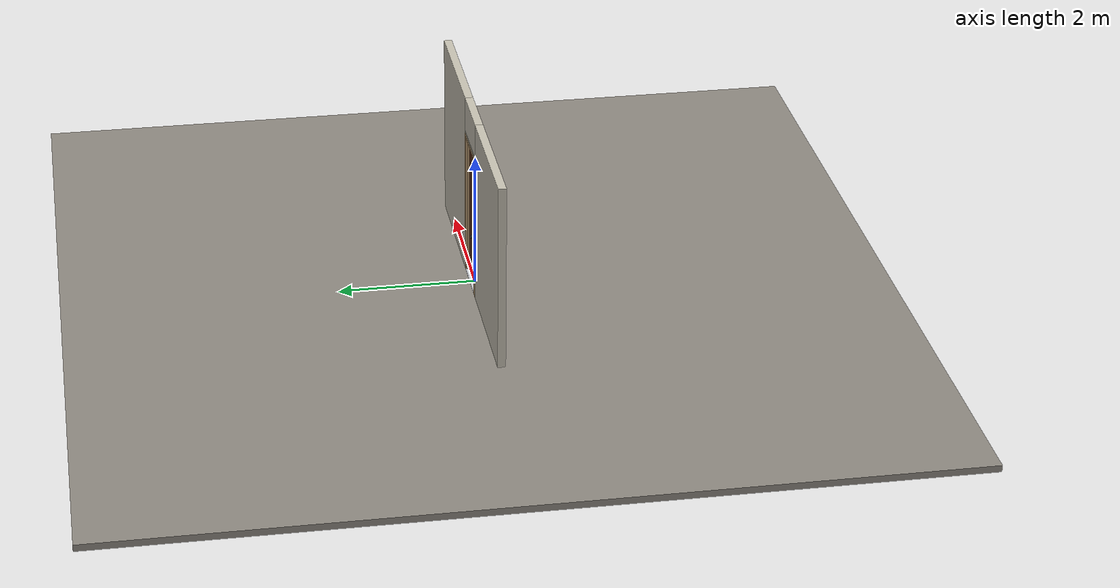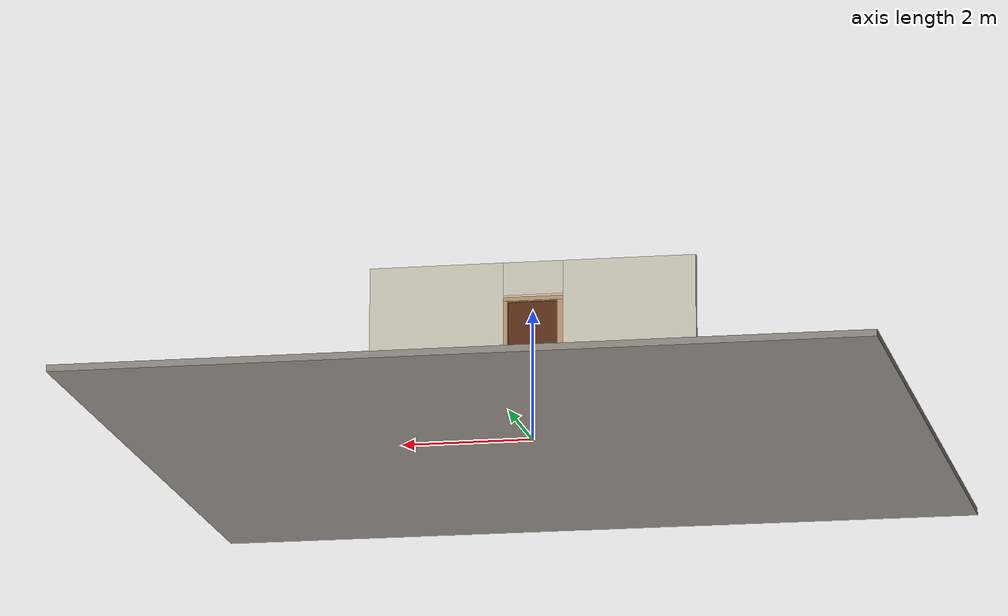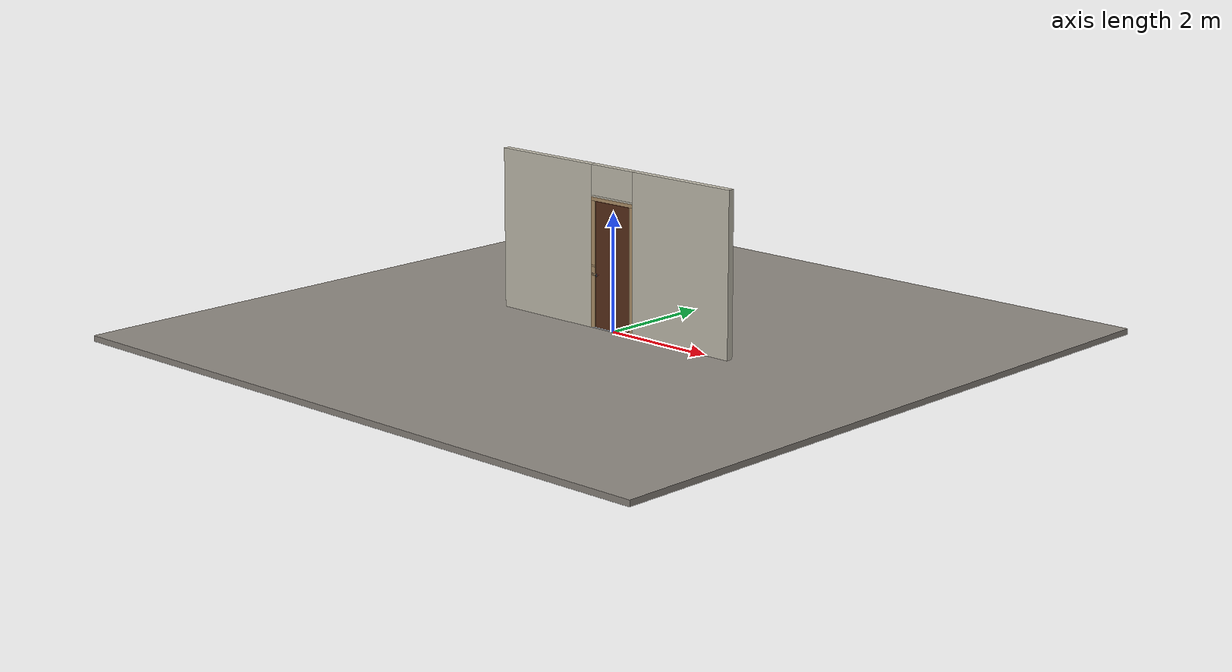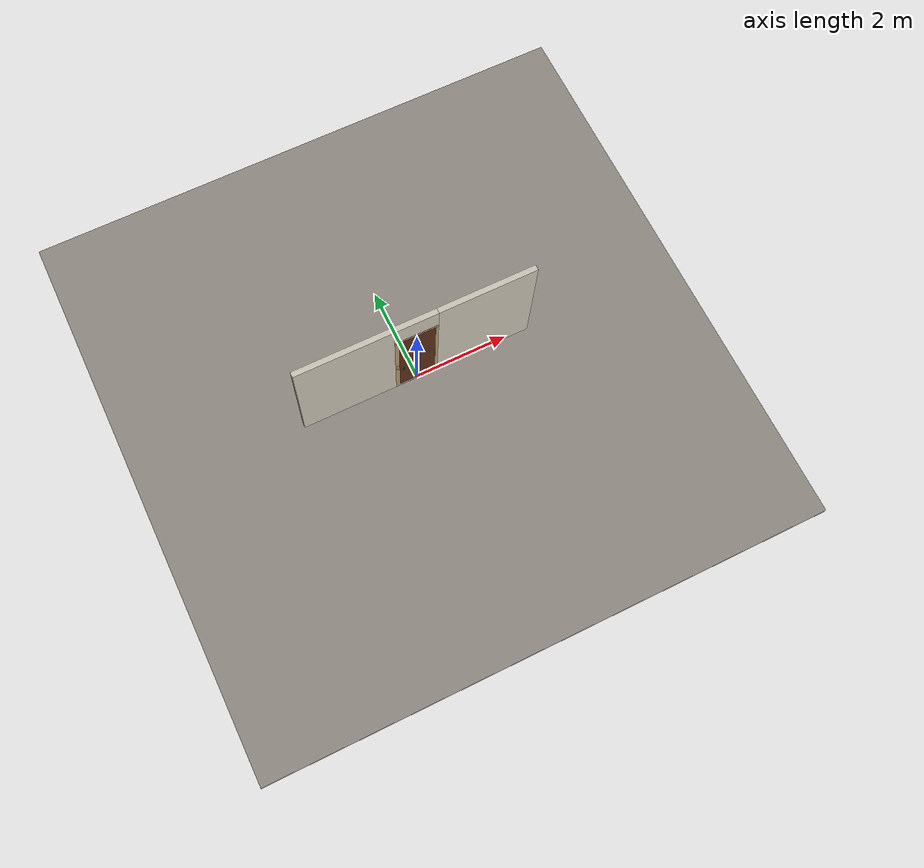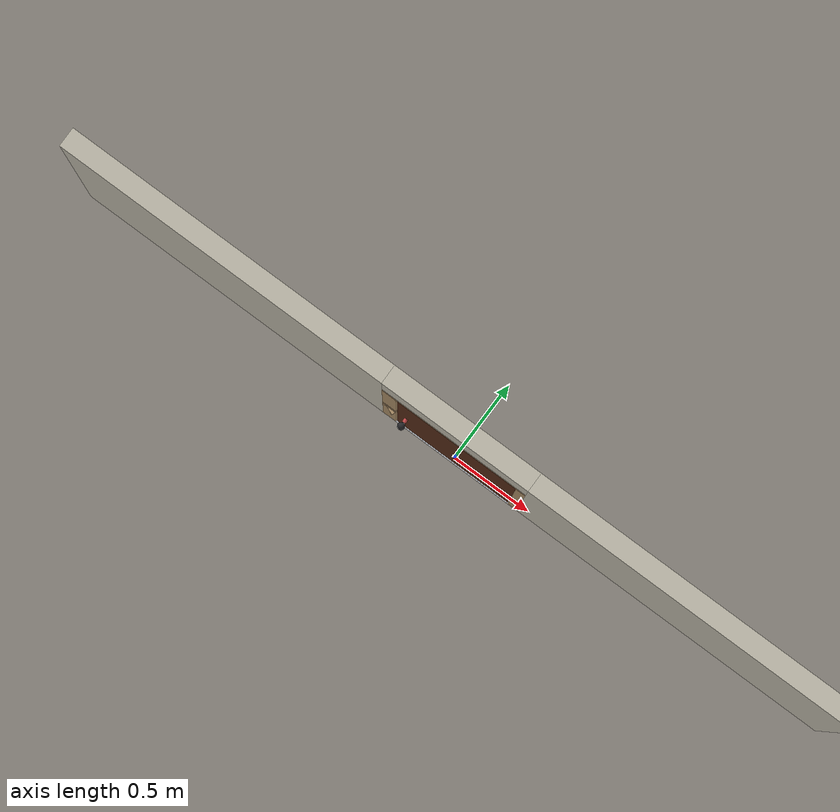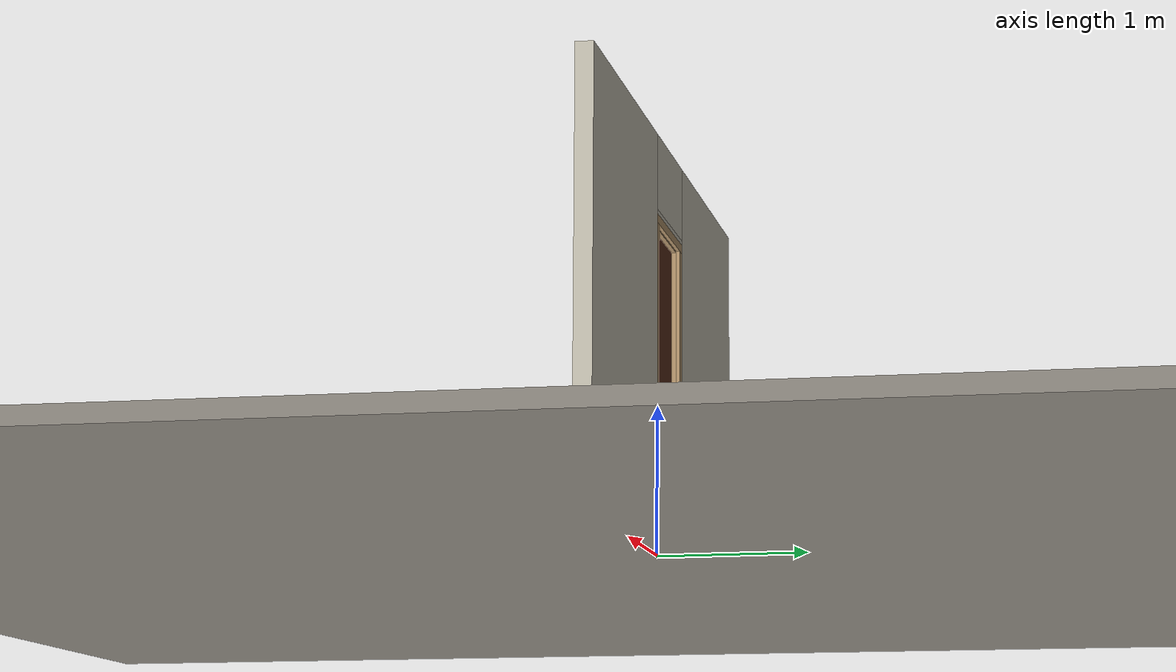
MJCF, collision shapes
<?xml version="1.0" ?>
<mujoco model="db0122_swing_single_minimal">
  <compiler angle="radian" meshdir="../../hardware" texturedir="../../textures" autolimits="true" inertiafromgeom="false"/>
  <option timestep="0.002" integrator="implicitfast" cone="elliptic" impratio="10" noslip_iterations="3">
    <flag multiccd="enable"/>
  </option>
  <size memory="16M"/>
  <default>
    <geom condim="4" solref="0.005 1" solimp="0.95 0.99 0.001"/>
    <joint solreflimit="0.005 1" solimplimit="0.95 0.99 0.001"/>
    <tendon solreflimit="0.005 1"/>
    <equality solref="0.002 1"/>
  </default>
  <visual>
    <headlight ambient="0.4 0.4 0.4" diffuse="0.7 0.7 0.7" specular="0.2 0.2 0.2"/>
    <quality shadowsize="4096"/>
    <map znear="0.01" zfar="60"/>
  </visual>
  <asset>
    <mesh name="knob_3926f4c53b" file="knob_3926f4c53b.obj"/>
    <material name="mat_floor" rgba="0.55 0.53 0.5 1" specular="0.2" shininess="0.15" reflectance="0"/>
    <material name="mat_wall" rgba="0.78 0.76 0.7 1" specular="0.2" shininess="0.1" reflectance="0"/>
    <material name="mat_leaf" rgba="0.35 0.18 0.1 1" specular="0.2" shininess="0.4" reflectance="0"/>
    <material name="mat_leaf_panel" rgba="0.322 0.166 0.092 1" specular="0.2" shininess="0.4" reflectance="0"/>
    <material name="mat_button" rgba="0.7 0.6 0.3 1" specular="0.8" shininess="0.7" reflectance="0.4"/>
    <material name="mat_hinge" rgba="0.45 0.3 0.22 1" specular="0.5" shininess="0.1" reflectance="0.2"/>
    <material name="mat_op_cast_iron" rgba="0.15 0.15 0.16 1" specular="0.5" shininess="0.2" reflectance="0.2"/>
    <material name="mat_rim_case" rgba="0.15 0.15 0.16 1" specular="0.5" shininess="0.2" reflectance="0.2"/>
    <material name="mat_trim" rgba="0.85 0.66 0.3 1" specular="0.8" shininess="0.75" reflectance="0.4"/>
    <material name="mat_bolt" rgba="0.85 0.66 0.3 1" specular="0.8" shininess="0.75" reflectance="0.4"/>
    <material name="mat_night_latch" rgba="0.55 0.42 0.22 1" specular="0.74" shininess="0.45" reflectance="0.36"/>
    <material name="mat_deadbolt" rgba="0.85 0.66 0.3 1" specular="0.8" shininess="0.75" reflectance="0.4"/>
    <material name="mat_frame" rgba="0.7 0.58 0.42 1" specular="0.2" shininess="0.5" reflectance="0"/>
    <material name="mat_threshold" rgba="0.8 0.81 0.83 1" specular="0.8" shininess="0.6" reflectance="0.4"/>
    <material name="mat_bumper_stop" rgba="0.08 0.08 0.08 1" specular="0.2" shininess="0.1" reflectance="0"/>
    <material name="mat_stop_base" rgba="0.9 0.9 0.92 1" specular="0.8" shininess="0.9" reflectance="0.4"/>
    <texture name="skybox" type="skybox" builtin="gradient" rgb1="0.6 0.7 0.85" rgb2="0.9 0.92 0.95" width="256" height="256"/>
  </asset>
  <worldbody>
    <light name="sun" pos="1.5 -2.5 4" dir="-0.3 0.5 -0.8" directional="true" diffuse="0.8 0.8 0.8" specular="0.3 0.3 0.3" castshadow="true"/>
    <light name="fill" pos="-1.5 2.5 3" dir="0.3 -0.5 -0.7" directional="true" diffuse="0.35 0.35 0.4" castshadow="false"/>
    <camera name="robot_view" pos="0 -2.612312 1.812087" xyaxes="1 0 0 0 0.26963 0.962964" fovy="52"/>
    <camera name="far_view" pos="0 2.663312 1.812087" xyaxes="-1 0 0 0 -0.26963 0.962964" fovy="52"/>
    <camera name="iso" pos="-2.004737 -2.190262 2.234138" xyaxes="0.741536 -0.670913 0 0.242917 0.268487 0.932151" fovy="46"/>
    <camera name="detail_handle" pos="-0.14 -0.8725 1.194" xyaxes="0.97561 0.219512 0 -0.070934 0.315262 0.94635" fovy="38"/>
    <geom name="floor" type="box" size="6 6 0.05" pos="0 0 -0.05" material="mat_floor" group="0" contype="1" conaffinity="1" friction="0.8 0.005 0.0001" density="2400"/>
    <geom name="wall_left" type="box" size="1.0125 0.0575 1.3735" pos="-1.4875 0.0255 1.3735" material="mat_wall" group="0" contype="1" conaffinity="1" friction="0.6 0.005 0.0001" density="800"/>
    <geom name="wall_right" type="box" size="1.0275 0.0575 1.3735" pos="1.4725 0.0255 1.3735" material="mat_wall" group="0" contype="1" conaffinity="1" friction="0.6 0.005 0.0001" density="800"/>
    <geom name="wall_header" type="box" size="0.46 0.0575 0.255" pos="-0.015 0.0255 2.492" material="mat_wall" group="0" contype="1" conaffinity="1" friction="0.6 0.005 0.0001" density="800"/>
    <geom name="jamb_hinge" type="box" size="0.03 0.0575 1.0735" pos="0.415 0.0255 1.0735" material="mat_frame" group="0" contype="1" conaffinity="1" friction="0.6 0.005 0.0001" density="750"/>
    <geom name="strike_914_wall_n" type="box" size="0.045 0.037575 0.0167" pos="-0.43 0.045425 0.914" material="mat_frame" group="0" contype="1" conaffinity="1" friction="0.6 0.005 0.0001" density="750"/>
    <geom name="strike_914_wall_p" type="box" size="0.045 0.008 0.0167" pos="-0.43 -0.01585 0.914" material="mat_frame" group="0" contype="1" conaffinity="1" friction="0.6 0.005 0.0001" density="750"/>
    <geom name="strike_914_ramp" type="box" size="0.045 0.01649 0.0167" pos="-0.432784 -0.020157 0.914" quat="0.977148 0 0 -0.212558" material="mat_frame" group="0" contype="1" conaffinity="1" friction="0.12 0.005 0.0001" density="750"/>
    <geom name="strike_914_back" type="box" size="0.03665 0.00785 0.0167" pos="-0.43835 0 0.914" material="mat_frame" group="0" contype="1" conaffinity="1" friction="0.6 0.005 0.0001" density="750"/>
    <geom name="strike_1054_wall_n" type="box" size="0.045 0.03675 0.0155" pos="-0.43 0.04625 1.054" material="mat_frame" group="0" contype="1" conaffinity="1" friction="0.6 0.005 0.0001" density="750"/>
    <geom name="strike_1054_wall_p" type="box" size="0.045 0.01125 0.0155" pos="-0.43 -0.02075 1.054" material="mat_frame" group="0" contype="1" conaffinity="1" friction="0.6 0.005 0.0001" density="750"/>
    <geom name="strike_1054_back" type="box" size="0.035 0.0095 0.0155" pos="-0.44 0 1.054" material="mat_frame" group="0" contype="1" conaffinity="1" friction="0.6 0.005 0.0001" density="750"/>
    <geom name="jamb_strike_0" type="box" size="0.045 0.0575 0.44865" pos="-0.43 0.0255 0.44865" material="mat_frame" group="0" contype="1" conaffinity="1" friction="0.6 0.005 0.0001" density="750"/>
    <geom name="jamb_strike_1" type="box" size="0.045 0.0575 0.0539" pos="-0.43 0.0255 0.9846" material="mat_frame" group="0" contype="1" conaffinity="1" friction="0.6 0.005 0.0001" density="750"/>
    <geom name="jamb_strike_2" type="box" size="0.045 0.0575 0.53875" pos="-0.43 0.0255 1.60825" material="mat_frame" group="0" contype="1" conaffinity="1" friction="0.6 0.005 0.0001" density="750"/>
    <geom name="jamb_head" type="box" size="0.46 0.0575 0.03" pos="-0.015 0.0255 2.177" material="mat_frame" group="0" contype="1" conaffinity="1" friction="0.6 0.005 0.0001" density="750"/>
    <geom name="head_stud" type="box" size="0.46 0.0575 0.015" pos="-0.015 0.0255 2.222" material="mat_wall" group="0" contype="1" conaffinity="1" friction="0.6 0.005 0.0001" density="500"/>
    <geom name="stop_hinge" type="box" size="0.0055 0.016 1.0735" pos="0.3795 0.0415 1.0735" material="mat_frame" group="0" contype="1" conaffinity="1" friction="0.6 0.005 0.0001" density="750"/>
    <geom name="stop_strike" type="box" size="0.0055 0.016 1.0735" pos="-0.3795 0.0415 1.0735" material="mat_frame" group="0" contype="1" conaffinity="1" friction="0.6 0.005 0.0001" density="750"/>
    <geom name="stop_head" type="box" size="0.385 0.016 0.0055" pos="0 0.0415 2.1415" material="mat_frame" group="0" contype="1" conaffinity="1" friction="0.6 0.005 0.0001" density="750"/>
    <geom name="threshold" type="box" size="0.445 0.0575 0.0065" pos="0 0.0255 0.0065" material="mat_threshold" group="0" contype="1" conaffinity="1" friction="0.5 0.005 0.0001" density="2700"/>
    <site name="approach_point" pos="0 -1.5 0" quat="1 0 0 0" size="0.05" rgba="0.2 0.9 0.2 0.5" group="4"/>
    <site name="goal_point" pos="0 1.5 0" quat="1 0 0 0" size="0.05" rgba="0.2 0.9 0.2 0.5" group="4"/>
    <site name="door_plane_center" pos="0 0 1.0735" quat="1 0 0 0" size="0.02" rgba="0.2 0.9 0.2 0.5" group="4"/>
    <body name="leaf" pos="0.385 0 0">
      <inertial pos="-0.384 0 1.08" mass="61.706311" quat="-0.5 0.5 0.5 0.5" diaginertia="2.998638774 23.254928498 26.227856309"/>
      <joint name="leaf_hinge" type="hinge" axis="0 0 1" pos="-0.003 -0.032 0" limited="true" range="0 1.570796" damping="0.179937" frictionloss="21.739897" armature="0.02"/>
      <geom name="leaf_slab" type="box" size="0.381 0.025 1.063" pos="-0.384 0 1.08" material="mat_leaf" group="0" contype="1" conaffinity="1" friction="0.5 0.005 0.0001" density="1"/>
      <site name="leaf_edge_mid" pos="-0.765 0 1.063" quat="1 0 0 0" size="0.02" rgba="0.2 0.9 0.2 0.5" group="4"/>
      <body name="leaf_handle" pos="-0.705 0 0.914">
        <inertial pos="0 0.015 0" mass="0.871054" quat="0.5 0.5 0.5 0.5" diaginertia="0.000190285 0.005603445 0.005603445"/>
        <joint name="leaf_handle_hinge" type="hinge" axis="0 1 0" limited="true" range="0 0.85" damping="0.156402" frictionloss="0.052" stiffness="0.6" springref="-0.5" armature="0.01"/>
        <geom name="leaf_handle_knob_n" type="mesh" mesh="knob_3926f4c53b" pos="0 -0.025 0" quat="0 0 -0.707107 0.707107" material="mat_op_cast_iron" group="1" contype="0" conaffinity="0" density="3000"/>
        <geom name="leaf_handle_knob_col_n" type="sphere" size="0.0225" pos="0 -0.0725 0" material="mat_op_cast_iron" group="0" contype="1" conaffinity="1" friction="0.9 0.01 0.0001" density="3000"/>
        <geom name="leaf_handle_knob_neck_n" type="cylinder" size="0.011 0.012" pos="0 -0.037 0" quat="0.707107 -0.707107 0 0" material="mat_op_cast_iron" group="3" contype="1" conaffinity="1" rgba="0.8 0.3 0.3 0.25" friction="0.6 0.005 0.0001" density="3000"/>
        <geom name="leaf_handle_knob_p" type="mesh" mesh="knob_3926f4c53b" pos="0 0.055 0" quat="0 0 0.707107 0.707107" material="mat_op_cast_iron" group="1" contype="0" conaffinity="0" density="3000"/>
        <geom name="leaf_handle_knob_col_p" type="sphere" size="0.0225" pos="0 0.1025 0" material="mat_op_cast_iron" group="0" contype="1" conaffinity="1" friction="0.9 0.01 0.0001" density="3000"/>
        <geom name="leaf_handle_knob_neck_p" type="cylinder" size="0.011 0.012" pos="0 0.067 0" quat="0.707107 -0.707107 0 0" material="mat_op_cast_iron" group="3" contype="1" conaffinity="1" rgba="0.8 0.3 0.3 0.25" friction="0.6 0.005 0.0001" density="3000"/>
        <site name="leaf_handle_grip_n" pos="0 -0.0725 0" quat="1 0 0 0" size="0.012" rgba="0.2 0.9 0.2 0.5" group="4"/>
        <site name="leaf_handle_grip_p" pos="0 0.1025 0" quat="1 0 0 0" size="0.012" rgba="0.2 0.9 0.2 0.5" group="4"/>
      </body>
      <body name="leaf_latch_bolt" pos="-0.765 0 0.914">
        <inertial pos="0.00865 0 0" mass="0.041419" quat="0.92388 0.382683 0 0" diaginertia="0.000000798 0.000005598 0.000005598"/>
        <joint name="leaf_latch_bolt_slide" type="slide" axis="1 0 0" limited="true" range="0 0.0127" damping="2" frictionloss="0.3" stiffness="300" springref="-0.008333" armature="0.1"/>
        <geom name="leaf_latch_bolt_capsule" type="capsule" size="0.00635 0.015" pos="0.00865 0 0" quat="0.707107 0 -0.707107 0" material="mat_bolt" group="0" contype="1" conaffinity="1" friction="0.2 0.005 0.0001" density="8500"/>
      </body>
    </body>
  </worldbody>
  <tendon>
    <fixed name="leaf_latch_bolt_coupling" limited="true" range="0 10">
      <joint joint="leaf_latch_bolt_slide" coef="1"/>
      <joint joint="leaf_handle_hinge" coef="-0.016494"/>
    </fixed>
  </tendon>
  <sensor>
    <jointpos name="leaf_hinge_pos" joint="leaf_hinge"/>
    <jointvel name="leaf_hinge_vel" joint="leaf_hinge"/>
    <jointpos name="leaf_handle_hinge_pos" joint="leaf_handle_hinge"/>
    <jointvel name="leaf_handle_hinge_vel" joint="leaf_handle_hinge"/>
    <jointpos name="leaf_latch_bolt_slide_pos" joint="leaf_latch_bolt_slide"/>
    <jointvel name="leaf_latch_bolt_slide_vel" joint="leaf_latch_bolt_slide"/>
  </sensor>
</mujoco>
